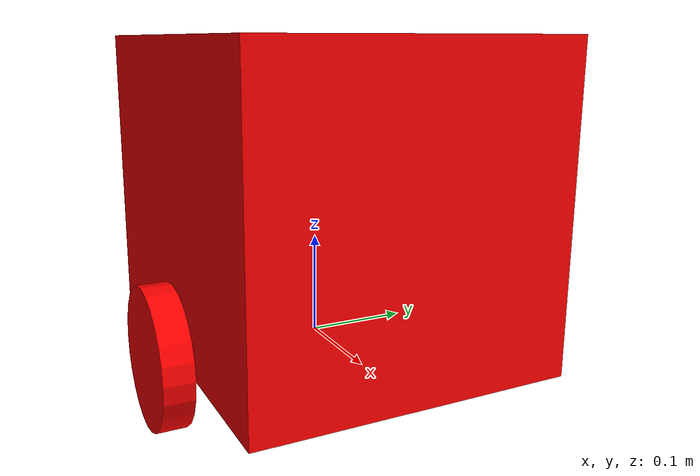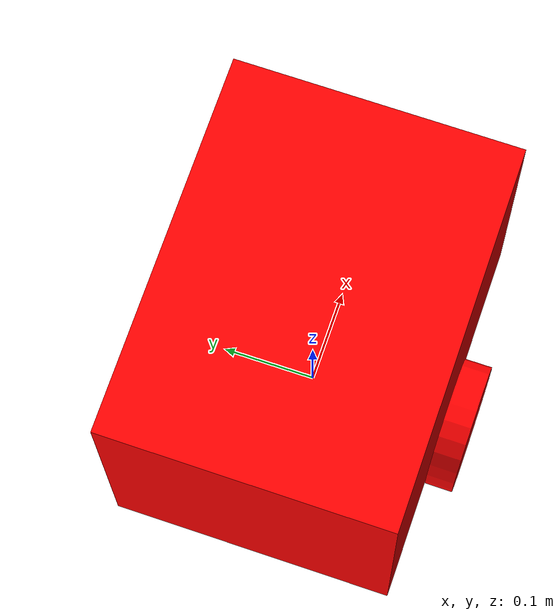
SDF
<sdf version='1.11'>
  <world name="preview">
   <physics name="1ms" type="ignored">
      <max_step_size>0.001</max_step_size>
      <real_time_factor>1.0</real_time_factor>
    </physics>
    <plugin
      filename="gz-sim-physics-system"
      name="gz::sim::systems::Physics">
    </plugin>
    <plugin
      filename="gz-sim-user-commands-system"
      name="gz::sim::systems::UserCommands">
    </plugin>
    <plugin
      filename="gz-sim-scene-broadcaster-system"
      name="gz::sim::systems::SceneBroadcaster">
    </plugin>
    <plugin
      filename="gz-sim-contact-system"
      name="gz::sim::systems::Contact">
    </plugin>
    <plugin
      filename="ignition-gazebo-sensors-system"
      name="gz::sim::systems::Sensors">
      <render_engine>ogre2</render_engine>
    </plugin>
  <model name='box_bot'>
    <link name='base_link'>
      <inertial>
        <pose>0 0 0.14999999999999999 0 0 0</pose>
        <mass>0.10000000000000001</mass>
        <inertia>
          <ixx>0.0015</ixx>
          <ixy>0</ixy>
          <ixz>0</ixz>
          <iyy>0.0020833333333333329</iyy>
          <iyz>0</iyz>
          <izz>0.0020833333333333329</izz>
        </inertia>
      </inertial>
      <collision name='base_link_fixed_joint_lump__chassi_collision'>
        <pose>0 0 0.14999999999999999 0 0 0</pose>
        <geometry>
          <box>
            <size>0.40000000000000002 0.29999999999999999 0.29999999999999999</size>
          </box>
        </geometry>
      </collision>
      <visual name='base_link_fixed_joint_lump__chassi_visual'>
        <pose>0 0 0.14999999999999999 0 0 0</pose>
        <geometry>
          <box>
            <size>0.40000000000000002 0.29999999999999999 0.29999999999999999</size>
          </box>
        </geometry>
        <material>
          <diffuse>1 0 0 1</diffuse>
          <ambient>1 0 0 1</ambient>
        </material>
      </visual>
      <sensor name="depth_camera1" type="depth_camera">
          <update_rate>10</update_rate>
          <topic>depth_camera111</topic>
          <camera>
            <horizontal_fov>1.05</horizontal_fov>
            <image>
              <width>256</width>
              <height>256</height>
              <format>R_FLOAT32</format>
            </image>
            <clip>
              <near>0.1</near>
              <far>10.0</far>
            </clip>
          </camera>
          </sensor>
    </link>
    <joint name='join_wheel_left' type='revolute'>
      <pose relative_to='base_link'>0 0.14999999999999999 0 0 0 0</pose>
      <parent>base_link</parent>
      <child>wheel_left</child>
      <axis>
        <xyz>0 -1 0</xyz>
        <limit>
          <lower>-inf</lower>
          <upper>inf</upper>
        </limit>
        <dynamics>
          <spring_reference>0</spring_reference>
          <spring_stiffness>0</spring_stiffness>
        </dynamics>
      </axis>
    </joint>
    <link name='wheel_left'>
      <pose relative_to='join_wheel_left'>0 0 0 0 0 0</pose>
      <inertial>
        <pose>0 0.014999999999999999 0 0 0 0</pose>
        <mass>0.10000000000000001</mass>
        <inertia>
          <ixx>0.00012999999999999999</ixx>
          <ixy>0</ixy>
          <ixz>0</ixz>
          <iyy>0.00012999999999999999</iyy>
          <iyz>0</iyz>
          <izz>0.00024499999999999999</izz>
        </inertia>
      </inertial>
      <collision name='wheel_left_collision'>
        <pose>0 0.014999999999999999 0 1.5707963267948959 0 0</pose>
        <geometry>
          <cylinder>
            <length>0.029999999999999999</length>
            <radius>0.070000000000000007</radius>
          </cylinder>
        </geometry>
      </collision>
      <visual name='wheel_left_visual'>
        <pose>0 0.014999999999999999 0 1.5707963267948959 0 0</pose>
        <geometry>
          <cylinder>
            <length>0.029999999999999999</length>
            <radius>0.070000000000000007</radius>
          </cylinder>
        </geometry>
        <material>
          <diffuse>1 0 0 1</diffuse>
          <ambient>1 0 0 1</ambient>
        </material>
      </visual>
    </link>
    <joint name='join_wheel_right' type='revolute'>
      <pose relative_to='base_link'>0 -0.17999999999999999 0 0 0 0</pose>
      <parent>base_link</parent>
      <child>wheel_right</child>
      <axis>
        <xyz>0 -1 0</xyz>
        <limit>
          <lower>-inf</lower>
          <upper>inf</upper>
        </limit>
        <dynamics>
          <spring_reference>0</spring_reference>
          <spring_stiffness>0</spring_stiffness>
        </dynamics>
      </axis>
    </joint>
    <link name='wheel_right'>
      <pose relative_to='join_wheel_right'>0 0 0 0 0 0</pose>
      <inertial>
        <pose>0 0.014999999999999999 0 0 0 0</pose>
        <mass>0.10000000000000001</mass>
        <inertia>
          <ixx>0.00012999999999999999</ixx>
          <ixy>0</ixy>
          <ixz>0</ixz>
          <iyy>0.00012999999999999999</iyy>
          <iyz>0</iyz>
          <izz>0.00024499999999999999</izz>
        </inertia>
      </inertial>
      <collision name='wheel_right_collision'>
        <pose>0 0.014999999999999999 0 1.5707963267948959 0 0</pose>
        <geometry>
          <cylinder>
            <length>0.029999999999999999</length>
            <radius>0.070000000000000007</radius>
          </cylinder>
        </geometry>
      </collision>
      <visual name='wheel_right_visual'>
        <pose>0 0.014999999999999999 0 1.5707963267948959 0 0</pose>
        <geometry>
          <cylinder>
            <length>0.029999999999999999</length>
            <radius>0.070000000000000007</radius>
          </cylinder>
        </geometry>
        <material>
          <diffuse>1 0 0 1</diffuse>
          <ambient>1 0 0 1</ambient>
        </material>
      </visual>
    </link>
    <plugin name='gz::sim::systems::DiffDrive' filename='gz-sim-diff-drive-system'>
      <left_joint>join_wheel_left</left_joint>
      <right_joint>join_wheel_right</right_joint>
      <wheel_separation>0.3</wheel_separation>
      <wheel_radius>0.07</wheel_radius>
      <max_linear_acceleration>10</max_linear_acceleration>
      <odom_topic>odom</odom_topic>
      <frame_id>odom</frame_id>
      <child_frame_id>base_link</child_frame_id>
      <odom_publisher_frequency>30</odom_publisher_frequency>
      <tf_topic>/tf</tf_topic>
      <topic>cmd_vel</topic>
    </plugin>
    <plugin name='gz::sim::systems::JointStatePublisher'
      filename='gz-sim-joint-state-publisher-system'>
      <topic>joint_states</topic>
      <joint_name>join_wheel_left</joint_name>
      <joint_name>join_wheel_right</joint_name>
    </plugin>
    <frame name='fixed_join' attached_to='base_link'>
      <pose>0 0 0 0 0 0</pose>
    </frame>
    <frame name='chassi' attached_to='fixed_join'>
      <pose>0 0 0 0 0 0</pose>
    </frame>
  </model>
  </world>
</sdf>
